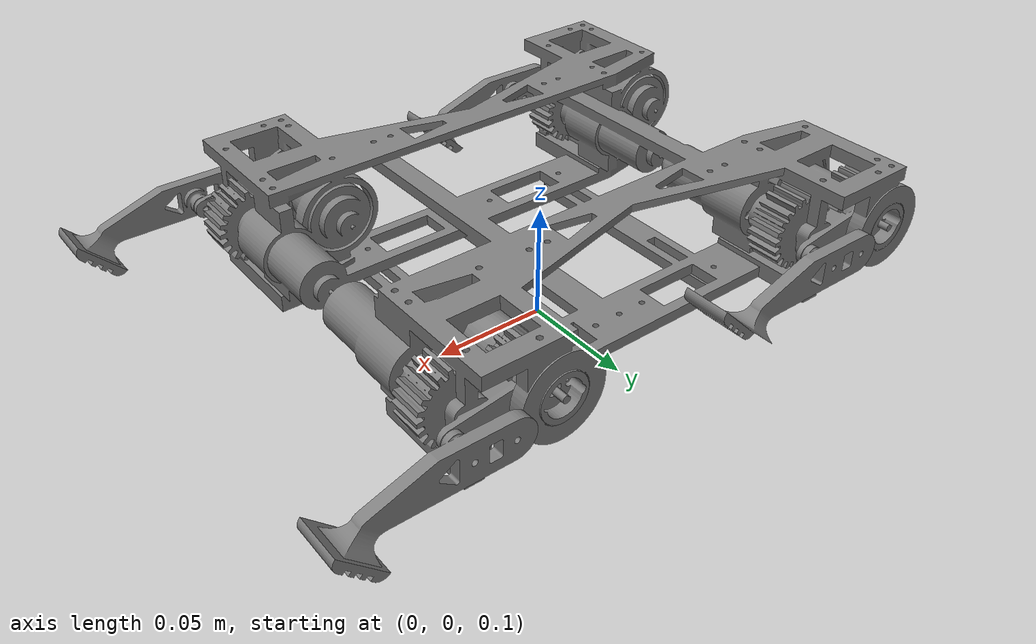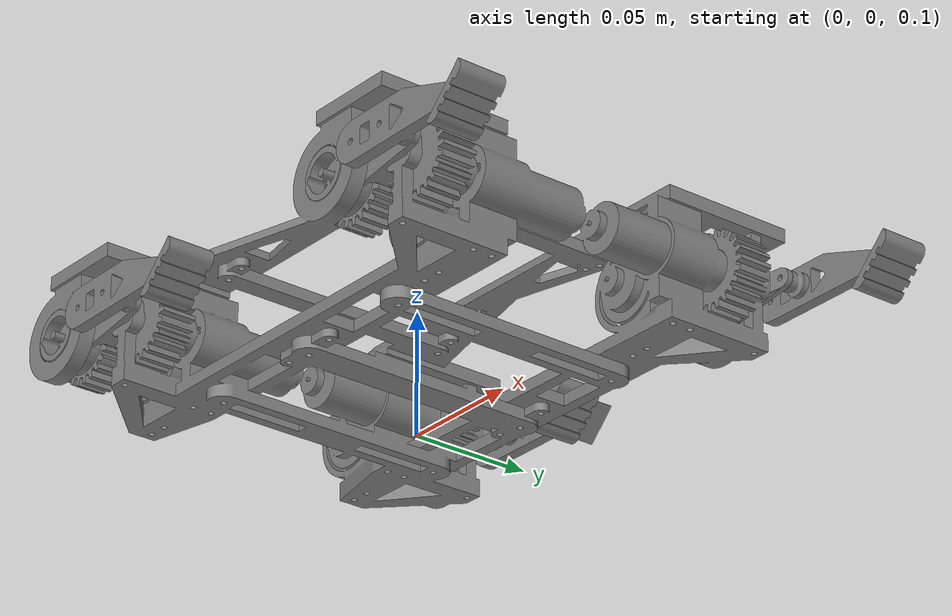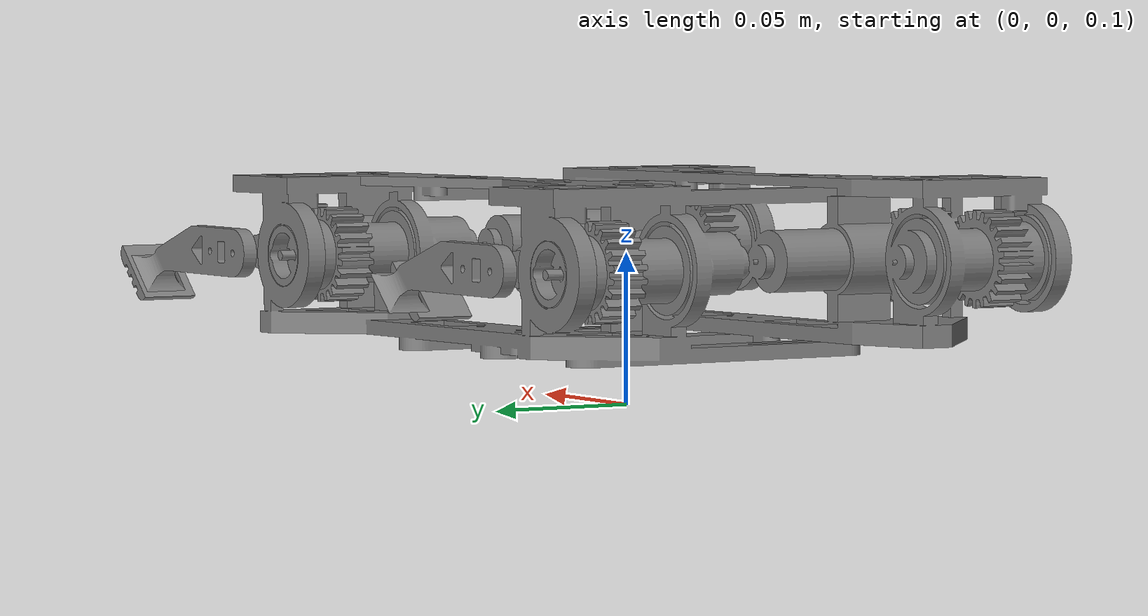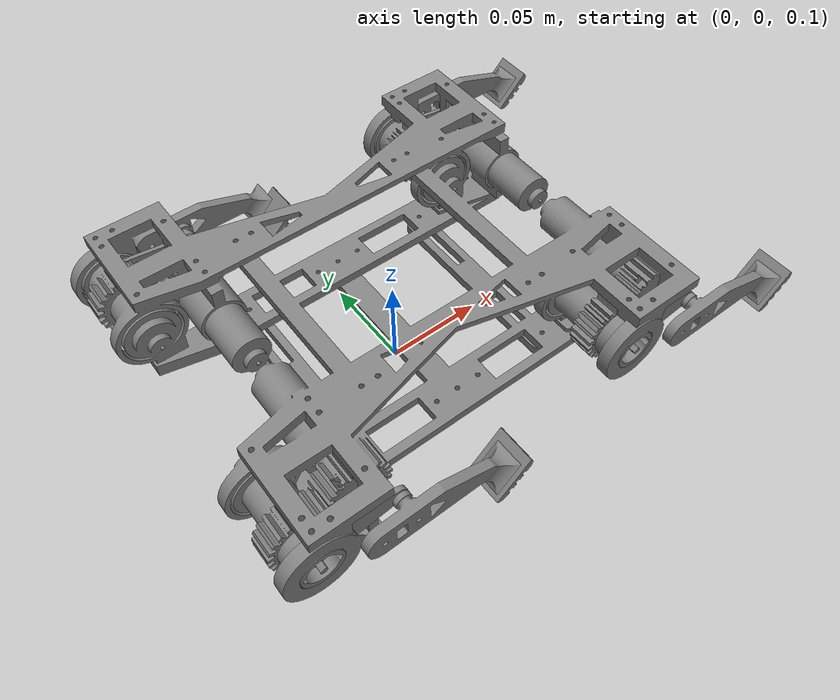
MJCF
<mujoco model="robot_leg">
	<compiler angle="radian" meshdir="assets" autolimits="true"/>
	<option cone="elliptic" impratio="100"/>
	<option gravity="0 0 -9.81"/>

	<default>
		<geom type="mesh" xyaxes="1 0 0 0 1 0"/>
		<default class="our_robot">
			<geom friction="0.6" margin="0.001" condim="1"/>
			<joint armature="0.02" frictionloss="0.1"/>
			<position kp="25" kv="1" forcerange="-0.83 0.83"/>

			<default class="tigh">
				<joint type="hinge" range="2.36 2.8" axis="0 1 0"/>
				<position ctrlrange="2.36 2.8"/>
			</default>

			<default class="knee">
				<joint type="hinge" range="-1.8 -1.20" axis="0 1 0"/>
				<position  ctrlrange="-1.8 -1.20"/>
			</default>

			<default class="paw">
				<geom mass=".001" friction=".516 .141 .01"/>

			</default>

		</default>
	</default>

	<asset>
		<material name="dark" rgba="90 7 0.1 1"/>
		<mesh name="rigth_calf_mesh" file="rigth_calf.stl" scale=".0008 .0008 .0008" />
		<mesh name="left_calf_mesh" file="left_calf.stl" scale=".0008 .0008 .0008" />
		<mesh name="left_tigh" file="left_tigh.stl" scale=".0008 .0008 .0008" />
		<mesh name="right_tigh" file="right_tigh.stl" scale=".0008 .0008 .0008" />
		<mesh name="paw" file="paw.stl" scale=".0008 .0008 .0008"/>
		<mesh name="chasis" file="chasis.stl" scale=".0008 .0008 .0008" />
	</asset>

	<worldbody>

		<body name="trunk" childclass="our_robot" pos="0 0 .15">
				<camera name="tracking" mode="trackcom" pos="0 -1 0.8" xyaxes="1 0 0 0 1 1"/>
				<geom contype="0" conaffinity="0" mesh="chasis" mass="1.858"/>
				<joint type="free"/>

				<body name="FL_tigh" pos="7.05e-02 8.16e-02 -13.00e-04">
						<geom mesh="left_tigh" mass=".01377"/>
						<joint class="tigh" name="FL_tigh_joint" pos="-5.00e-03 0.00e+00 0.00e-04"/>
						<body name="FL_calf" pos="3.76e-02 9.60e-03 -0.80e-03">
								<geom mesh="left_calf_mesh" mass=".01036"/>
								<joint class="knee" name="FL_knee_joint" pos="-2.40e-03 0.00e+00 8.00e-04"/>
								<body name="FL_paw" pos="4.16e-02 4.00e-03 -9.60e-03" quat="0 -0.38268343 0 0.92387953">
										<geom mesh="paw" class="paw"/>
								</body>
						</body>
				</body>

				<body name="FR_tigh" pos="7.05e-02 -7.90e-02 -13.00e-04">
						<geom mesh="right_tigh" mass=".01377"/>
						<joint class="tigh" name="FR_tigh_joint" pos="-5.00e-03 0.00e+00 0.00e-04"/>
						<body name="FR_calf" pos="3.76e-02 -9.90e-03 -0.80e-03">
								<geom mesh="rigth_calf_mesh" mass=".01036"/>
								<joint class="knee" name="FR_knee_joint" pos="-2.40e-03 0.00e+00 8.00e-04"/>
								<body name="FR_paw" pos="4.16e-02 -7.60e-03 -9.60e-03" quat="0 -0.38268343 0 0.92387953">
										<geom mesh="paw" class="paw"/>
								</body>
						</body>
				</body>

				<body name="BL_tigh" pos="-9.45e-02 8.16e-02 5.00e-04">
						<geom mesh="left_tigh" mass=".01377"/>
						<joint class="tigh" name="BL_tigh_joint" pos="-5.00e-03 0.00e+00 0.00e-04"/>
						<body name="BL_calf" pos="3.76e-02 9.60e-03 -0.80e-03">
								<geom mesh="left_calf_mesh" mass=".01036"/>
								<joint class="knee" name="BL_knee_joint" pos="-2.40e-03 0.00e+00 8.00e-04"/>
								<body name="BL_paw" pos="4.16e-02 -7.60e-03 -9.60e-03" quat="0 -0.38268343 0 0.92387953">
										<geom mesh="paw" class="paw"/>
								</body>
						</body>
				</body>

				<body name="BR_tigh" pos="-9.45e-02 -7.90e-02 5.00e-04">
						<geom mesh="right_tigh" mass=".01377"/>
						<joint class="tigh" name="BR_tigh_joint" pos="-5.00e-03 0.00e+00 0.00e-04"/>
						<body name="BR_calf" pos="3.76e-02 -9.90e-03 -0.80e-03">
								<geom mesh="rigth_calf_mesh" mass=".01036"/>
								<joint class="knee" name="BR_knee_joint" pos="-2.40e-03 0.00e+00 8.00e-04"/>
								<body name="BR_paw" pos="4.16e-02 -7.60e-03 -9.60e-03" quat="0 -0.38268343 0 0.92387953">
										<geom mesh="paw" class="paw"/>
								</body>
						</body>
				</body>
		</body>

	</worldbody>

	<actuator>
			<position class="tigh" name="FR_tigh_actuator" joint="FR_tigh_joint"/>
			<position class="knee" name="FR_knee_actuator" joint="FR_knee_joint"/>
			<position class="tigh" name="BR_tigh_actuator" joint="BR_tigh_joint"/>
			<position class="knee" name="BR_knee_actuator" joint="BR_knee_joint"/>
			<position class="tigh" name="FL_tigh_actuator" joint="FL_tigh_joint"/>
			<position class="knee" name="FL_knee_actuator" joint="FL_knee_joint"/>
			<position class="tigh" name="BL_tigh_actuator" joint="BL_tigh_joint"/>
			<position class="knee" name="BL_knee_actuator" joint="BL_knee_joint"/>
	</actuator>

	<keyframe>
			<key name="home"
			qpos="0 0 .20 0 0 0 0 2.35619 -1.5708 2.35619 -1.5708 2.35619 -1.5708 2.35619 -1.5708"
			ctrl="2.35619 -1.5708 2.35619 -1.5708 2.35619 -1.5708 2.35619 -1.5708"/>
	</keyframe>
</mujoco>
